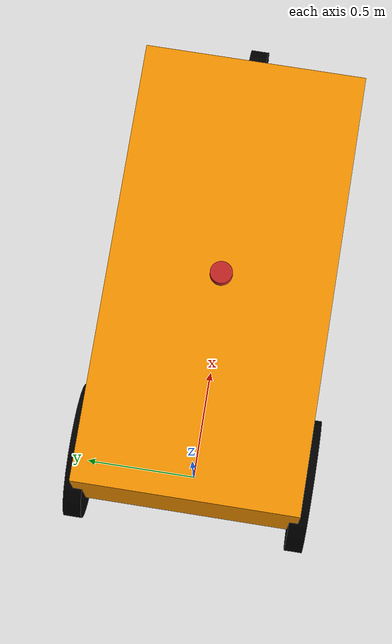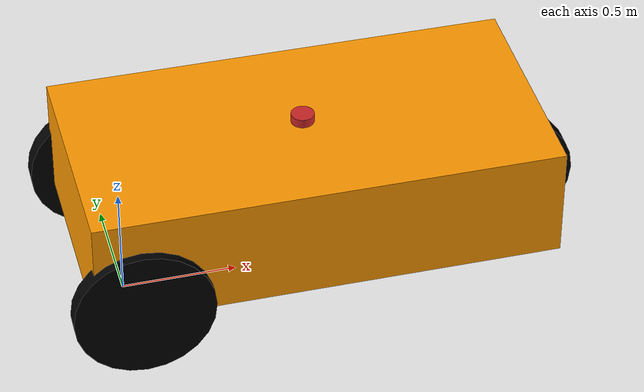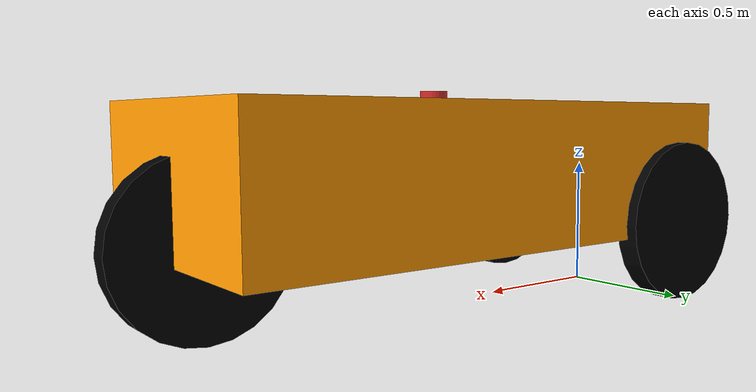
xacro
<?xml version="1.0"?>
<robot name="tricycle_drive" xmlns:xacro="http://ros.org/wiki/xacro">
  <material name="Black">
    <color rgba="0 0 0 1" />
  </material>
  <material name="Grey">
    <color rgba="0.8 0.8 0.8 1" />
  </material>
  <material name="Orange">
    <color rgba="1 0.6 0 1" />
  </material>
  <material name="White">
    <color rgba="1 1 1 1" />
  </material>

  <link name="base_link" />

  <joint name="base_footprint_joint" type="fixed">
    <parent link="base_link"/>
    <child link="base_footprint"/>
    <origin xyz="0 0 0" rpy="0 0 0"/>
  </joint>

  <link name="base_footprint">
  </link>

  <!-- Chassis -->
  <link name="chassis">
    <collision>
      <geometry>
        <box size="2 1 0.5" />
      </geometry>
    </collision>

    <visual>
      <geometry>
        <box size="2 1 0.5" />
      </geometry>
      <material name="Orange" />
    </visual>

    <inertial>
      <mass value="1" />
      <inertia ixx="0.126164" ixy="0.0" ixz="0.0" iyy="0.416519" iyz="0.0" izz="0.481014" />
    </inertial>
  </link>

  <joint name="chassis_joint" type="fixed">
    <origin xyz="0.8 0 0.5" rpy="0 0 0" />
    <parent link="base_link" />
    <child link="chassis" />
  </joint>

  <!-- left wheel Link -->
  <link name="left_wheel">
    <collision>
      <geometry>
        <cylinder length="0.08" radius="0.3" />
      </geometry>
    </collision>
    <visual>
      <geometry>
        <cylinder length="0.08" radius="0.3" />
      </geometry>
      <material name="Black" />
    </visual>

    <inertial>
      <mass value="2" />
      <inertia ixx="0.145833" ixy="0.0" ixz="0.0" iyy="0.145833" iyz="0.0" izz="0.125" />
    </inertial>
  </link>

  <joint name="left_wheel_joint" type="continuous">
    <origin xyz="-0.8 0.5 -0.2" rpy="-1.57 0 0" />
    <parent link="chassis" />
    <child link="left_wheel" />
    <axis xyz="0 0 1" />
    <dynamics damping="0.2" />
  </joint>

  <!-- right wheel Link -->
  <link name="right_wheel">
    <collision>
      <geometry>
        <cylinder length="0.08" radius="0.3" />
      </geometry>
    </collision>
    <visual>
      <geometry>
        <cylinder length="0.08" radius="0.3" />
      </geometry>
      <material name="Black" />
    </visual>

    <inertial>
      <mass value="2" />
      <inertia ixx="0.145833" ixy="0.0" ixz="0.0" iyy="0.145833" iyz="0.0" izz="0.125" />
    </inertial>
  </link>

  <joint name="right_wheel_joint" type="continuous">
    <origin xyz="-0.8 -0.5 -0.2" rpy="-1.57 0 0" />
    <parent link="chassis" />
    <child link="right_wheel" />
    <axis xyz="0 0 1" />
    <dynamics damping="0.2" />
  </joint>

  <!-- Steering Link -->
  <link name="steering_link">
    <visual>
      <geometry>
        <box size="0.01 0.01 0.01" />
      </geometry>
      <material name="Black" />
    </visual>
    <inertial>
      <origin xyz="0 0 0" rpy="0 0 0" />
      <mass value="0.005" />
      <inertia ixx="0.1" ixy="0.0" ixz="0.0" iyy="0.1" iyz="0.0" izz="0.1" />
    </inertial>
  </link>

  <joint name="steering_joint" type="continuous">
    <origin xyz="0.9 0 -0.2" rpy="0 0 0" />
    <parent link="chassis" />
    <child link="steering_link" />
    <axis xyz="0 0 1" />
  </joint>

  <!-- traction wheel link -->
  <link name="wheel_front_link">
    <visual>
      <geometry>
        <cylinder length="0.08" radius="0.3" />
      </geometry>
      <material name="Black" />
    </visual>
    <inertial>
      <origin xyz="0 0 0" rpy="0 0 0" />
      <mass value="15" />
      <inertia ixx="1" ixy="0" ixz="0" iyy="1" iyz="0" izz="1" />
    </inertial>
    <collision>
      <geometry>
        <cylinder length="0.08" radius="0.3" />
      </geometry>
    </collision>
  </link>

  <joint name="traction_joint" type="continuous">
    <parent link="steering_link" />
    <child link="wheel_front_link" />
    <origin xyz="0 0 0" rpy="-1.57 1.57 0" />
    <axis xyz="0 0 1" />
  </joint>

  <ros2_control name="GazeboSystem" type="system">
    <hardware>
      <plugin>gazebo_ros2_control/GazeboSystem</plugin>
    </hardware>
    <joint name="steering_joint">
      <command_interface name="position" />
      <state_interface name="position" />
    </joint>
    <joint name="traction_joint">
      <command_interface name="velocity" />
      <state_interface name="velocity" />
      <state_interface name="position" />
    </joint>
  </ros2_control>

  <gazebo>
    <plugin filename="libgazebo_ros2_control.so" name="gazebo_ros2_control">
      <parameters>$(find misis_robot)/config/tricycle_drive_controller.yaml</parameters>
    </plugin>
  </gazebo>

  <joint name="laser_joint" type="fixed">
        <parent link="chassis"/>
        <child link="laser_frame"/>
        <origin xyz="0 0 0.27" rpy="0 0 0"/>
    </joint>

    <link name="laser_frame">
        <visual>
            <geometry>
                <cylinder radius="0.05" length="0.04"/>
            </geometry>
            <material name="red"/>
        </visual>
        <collision>
            <geometry>
                <cylinder radius="0.05" length="0.04"/>
            </geometry>
        </collision>
    </link>

    <gazebo reference="laser_frame">
        <material>Gazebo/Red</material>

        <sensor name="laser" type="ray">
            <pose> 0 0 0 0 0 0 </pose>
            <visualize>true</visualize>
            <update_rate>10</update_rate>
            <ray>
                <scan>
                    <horizontal>
                        <samples>360</samples>
                        <min_angle>-3.14</min_angle>
                        <max_angle>3.14</max_angle>
                    </horizontal>
                </scan>
                <range>
                    <min>0.3</min>
                    <max>12</max>
                </range>
            </ray>
            <plugin name="laser_controller" filename="libgazebo_ros_ray_sensor.so">
                <ros>
                    <argument>~/out:=scan</argument>
                </ros>
                <output_type>sensor_msgs/LaserScan</output_type>
                <frame_name>laser_frame</frame_name>
            </plugin>
        </sensor>
    </gazebo>

</robot>
